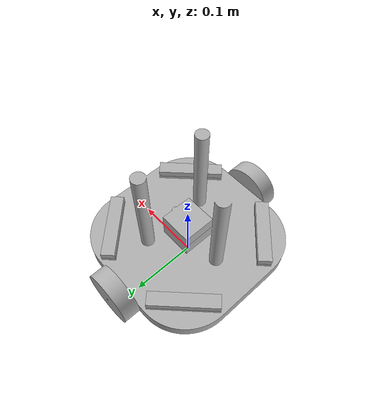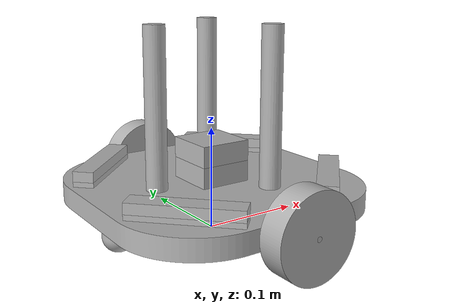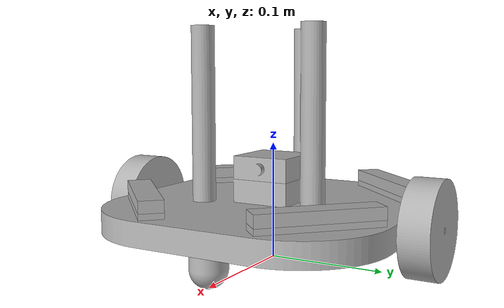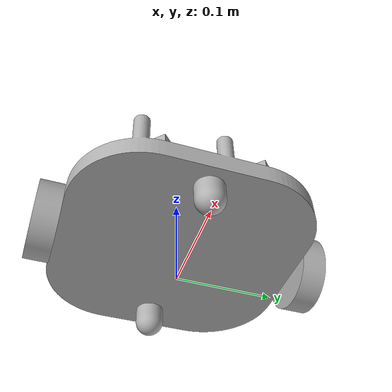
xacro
<?xml version="1.0" ?>
<robot name="uv_bot" xmlns:xacro="http://www.ros.org/wiki/xacro">

<xacro:include filename="$(find uv_bot_description)/urdf/materials.xacro" />
<xacro:include filename="$(find uv_bot_description)/urdf/uv_bot.trans" />
<xacro:include filename="$(find uv_bot_description)/gazebo/uv_bot_materials.gazebo" />
<xacro:include filename="$(find uv_bot_description)/gazebo/uv_bot_physics.gazebo" />
<xacro:include filename="$(find uv_bot_description)/gazebo/uv_bot_plugins.gazebo" />
<link name="base_link">
  <inertial>
    <origin rpy="0 0 0" xyz="3.571806660652383e-06 3.571806646843747e-06 0.04975376079280466"/>
    <mass value="1.468929546083317"/>
    <inertia ixx="0.007559" ixy="0.0" ixz="-0.0" iyy="0.007538" iyz="-0.0" izz="0.012508"/>
  </inertial>
  <visual>
    <origin rpy="0 0 0" xyz="0 0 0"/>
    <geometry>
      <mesh filename="package://uv_bot_description/meshes/base_link.stl" scale="0.001 0.001 0.001"/>
    </geometry>
    <material name="silver_default"/>
  </visual>
  <collision>
    <origin rpy="0 0 0" xyz="0 0 0"/>
    <geometry>
      <mesh filename="package://uv_bot_description/meshes/base_link.stl" scale="0.001 0.001 0.001"/>
    </geometry>
  </collision>
</link>

<link name="wheel_right_1">
  <inertial>
    <origin rpy="0 0 0" xyz="-1.026309976962807e-15 -0.012500000000000011 1.0408340855860843e-16"/>
    <mass value="0.11641073403106551"/>
    <inertia ixx="5.3e-05" ixy="-0.0" ixz="-0.0" iyy="9.3e-05" iyz="-0.0" izz="5.3e-05"/>
  </inertial>
  <visual>
    <origin rpy="0 0 0" xyz="-0.0 0.125 -0.04"/>
    <geometry>
      <mesh filename="package://uv_bot_description/meshes/wheel_right_1.stl" scale="0.001 0.001 0.001"/>
    </geometry>
    <material name="silver_default"/>
  </visual>
  <collision>
    <origin rpy="0 0 0" xyz="-0.0 0.125 -0.04"/>
    <geometry>
      <mesh filename="package://uv_bot_description/meshes/wheel_right_1.stl" scale="0.001 0.001 0.001"/>
    </geometry>
  </collision>
</link>

<link name="wheel_left_1">
  <inertial>
    <origin rpy="0 0 0" xyz="-1.026309976962807e-15 0.012499999999999983 6.938893903907228e-18"/>
    <mass value="0.11641073403106551"/>
    <inertia ixx="5.3e-05" ixy="-0.0" ixz="-0.0" iyy="9.3e-05" iyz="0.0" izz="5.3e-05"/>
  </inertial>
  <visual>
    <origin rpy="0 0 0" xyz="-0.0 -0.125 -0.04"/>
    <geometry>
      <mesh filename="package://uv_bot_description/meshes/wheel_left_1.stl" scale="0.001 0.001 0.001"/>
    </geometry>
    <material name="silver_default"/>
  </visual>
  <collision>
    <origin rpy="0 0 0" xyz="-0.0 -0.125 -0.04"/>
    <geometry>
      <mesh filename="package://uv_bot_description/meshes/wheel_left_1.stl" scale="0.001 0.001 0.001"/>
    </geometry>
  </collision>
</link>

<link name="camera_1">
  <inertial>
    <origin rpy="0 0 0" xyz="0.0002143013758641091 -8.14986513430258e-15 0.010000000000000009"/>
    <mass value="0.4505107297903865"/>
    <inertia ixx="0.000108" ixy="0.0" ixz="-0.0" iyy="0.000111" iyz="0.0" izz="0.000189"/>
  </inertial>
  <visual>
    <origin rpy="0 0 0" xyz="-0.0 -0.0 -0.07"/>
    <geometry>
      <mesh filename="package://uv_bot_description/meshes/camera_1.stl" scale="0.001 0.001 0.001"/>
    </geometry>
    <material name="silver_default"/>
  </visual>
  <collision>
    <origin rpy="0 0 0" xyz="-0.0 -0.0 -0.07"/>
    <geometry>
      <mesh filename="package://uv_bot_description/meshes/camera_1.stl" scale="0.001 0.001 0.001"/>
    </geometry>
  </collision>
</link>

<link name="uss_fr_1">
  <inertial>
    <origin rpy="0 0 0" xyz="-2.0343559643809517e-07 2.5406947977424377e-07 0.004999999999999984"/>
    <mass value="0.1787999999999997"/>
    <inertia ixx="7.9e-05" ixy="-7.2e-05" ixz="-0.0" iyy="7.9e-05" iyz="0.0" izz="0.000155"/>
  </inertial>
  <visual>
    <origin rpy="0 0 0" xyz="-0.078787 0.077782 -0.055"/>
    <geometry>
      <mesh filename="package://uv_bot_description/meshes/uss_fr_1.stl" scale="0.001 0.001 0.001"/>
    </geometry>
    <material name="silver_default"/>
  </visual>
  <collision>
    <origin rpy="0 0 0" xyz="-0.078787 0.077782 -0.055"/>
    <geometry>
      <mesh filename="package://uv_bot_description/meshes/uss_fr_1.stl" scale="0.001 0.001 0.001"/>
    </geometry>
  </collision>
</link>

<link name="uss_fl_1">
  <inertial>
    <origin rpy="0 0 0" xyz="-2.5406947992689943e-07 -2.0343559625768393e-07 0.005000000000000011"/>
    <mass value="0.17879999999999974"/>
    <inertia ixx="7.9e-05" ixy="7.2e-05" ixz="0.0" iyy="7.9e-05" iyz="0.0" izz="0.000155"/>
  </inertial>
  <visual>
    <origin rpy="0 0 0" xyz="-0.077782 -0.078787 -0.055"/>
    <geometry>
      <mesh filename="package://uv_bot_description/meshes/uss_fl_1.stl" scale="0.001 0.001 0.001"/>
    </geometry>
    <material name="silver_default"/>
  </visual>
  <collision>
    <origin rpy="0 0 0" xyz="-0.077782 -0.078787 -0.055"/>
    <geometry>
      <mesh filename="package://uv_bot_description/meshes/uss_fl_1.stl" scale="0.001 0.001 0.001"/>
    </geometry>
  </collision>
</link>

<link name="uss_bl_1">
  <inertial>
    <origin rpy="0 0 0" xyz="1.7818242700751163e-07 -2.793226491909495e-07 0.005000000000000025"/>
    <mass value="0.1787999999999999"/>
    <inertia ixx="7.9e-05" ixy="-7.2e-05" ixz="0.0" iyy="7.9e-05" iyz="-0.0" izz="0.000155"/>
  </inertial>
  <visual>
    <origin rpy="0 0 0" xyz="0.078292 -0.078277 -0.055"/>
    <geometry>
      <mesh filename="package://uv_bot_description/meshes/uss_bl_1.stl" scale="0.001 0.001 0.001"/>
    </geometry>
    <material name="silver_default"/>
  </visual>
  <collision>
    <origin rpy="0 0 0" xyz="0.078292 -0.078277 -0.055"/>
    <geometry>
      <mesh filename="package://uv_bot_description/meshes/uss_bl_1.stl" scale="0.001 0.001 0.001"/>
    </geometry>
  </collision>
</link>

<link name="uss_br_1">
  <inertial>
    <origin rpy="0 0 0" xyz="2.5406947978812155e-07 2.034355963964618e-07 0.004999999999999984"/>
    <mass value="0.17880000000000001"/>
    <inertia ixx="7.9e-05" ixy="7.2e-05" ixz="-0.0" iyy="7.9e-05" iyz="-0.0" izz="0.000155"/>
  </inertial>
  <visual>
    <origin rpy="0 0 0" xyz="0.077782 0.078787 -0.055"/>
    <geometry>
      <mesh filename="package://uv_bot_description/meshes/uss_br_1.stl" scale="0.001 0.001 0.001"/>
    </geometry>
    <material name="silver_default"/>
  </visual>
  <collision>
    <origin rpy="0 0 0" xyz="0.077782 0.078787 -0.055"/>
    <geometry>
      <mesh filename="package://uv_bot_description/meshes/uss_br_1.stl" scale="0.001 0.001 0.001"/>
    </geometry>
  </collision>
</link>

<link name="caster_front_1">
  <inertial>
    <origin rpy="0 0 0" xyz="0.050000000000000044 -0.05 -0.012749999999999942"/>
    <mass value="0.047712938426394985"/>
    <inertia ixx="5e-06" ixy="-0.0" ixz="-0.0" iyy="5e-06" iyz="-0.0" izz="5e-06"/>
  </inertial>
  <visual>
    <origin rpy="0 0 0" xyz="-0.05 -0.05 -0.03"/>
    <geometry>
      <mesh filename="package://uv_bot_description/meshes/caster_front_1.stl" scale="0.001 0.001 0.001"/>
    </geometry>
    <material name="silver_default"/>
  </visual>
  <collision>
    <origin rpy="0 0 0" xyz="-0.05 -0.05 -0.03"/>
    <geometry>
      <mesh filename="package://uv_bot_description/meshes/caster_front_1.stl" scale="0.001 0.001 0.001"/>
    </geometry>
  </collision>
</link>

<link name="caster_back_1">
  <inertial>
    <origin rpy="0 0 0" xyz="-0.049999999999999975 0.05 -0.012750000000000046"/>
    <mass value="0.047712938426394985"/>
    <inertia ixx="5e-06" ixy="0.0" ixz="-0.0" iyy="5e-06" iyz="-0.0" izz="5e-06"/>
  </inertial>
  <visual>
    <origin rpy="0 0 0" xyz="0.05 0.05 -0.03"/>
    <geometry>
      <mesh filename="package://uv_bot_description/meshes/caster_back_1.stl" scale="0.001 0.001 0.001"/>
    </geometry>
    <material name="silver_default"/>
  </visual>
  <collision>
    <origin rpy="0 0 0" xyz="0.05 0.05 -0.03"/>
    <geometry>
      <mesh filename="package://uv_bot_description/meshes/caster_back_1.stl" scale="0.001 0.001 0.001"/>
    </geometry>
  </collision>
</link>

<joint name="motor_right" type="continuous">
  <origin rpy="0 0 0" xyz="0.0 -0.125 0.04"/>
  <parent link="base_link"/>
  <child link="wheel_right_1"/>
  <axis xyz="0.0 1.0 0.0"/>
</joint>

<joint name="motor_left" type="continuous">
  <origin rpy="0 0 0" xyz="0.0 0.125 0.04"/>
  <parent link="base_link"/>
  <child link="wheel_left_1"/>
  <axis xyz="0.0 1.0 0.0"/>
</joint>

<joint name="camera_joint" type="fixed">
  <origin rpy="0 0 0" xyz="0.0 0.0 0.07"/>
  <parent link="base_link"/>
  <child link="camera_1"/>
</joint>

<joint name="uss_fr_rigid" type="fixed">
  <origin rpy="0 0 0" xyz="0.078787 -0.077782 0.055"/>
  <parent link="base_link"/>
  <child link="uss_fr_1"/>
</joint>

<joint name="uss_fl_rigid" type="fixed">
  <origin rpy="0 0 0" xyz="0.077782 0.078787 0.055"/>
  <parent link="base_link"/>
  <child link="uss_fl_1"/>
</joint>

<joint name="uss_bl_rigid" type="fixed">
  <origin rpy="0 0 0" xyz="-0.078292 0.078277 0.055"/>
  <parent link="base_link"/>
  <child link="uss_bl_1"/>
</joint>

<joint name="uss_br_rigid" type="fixed">
  <origin rpy="0 0 0" xyz="-0.077782 -0.078787 0.055"/>
  <parent link="base_link"/>
  <child link="uss_br_1"/>
</joint>

<joint name="caster_front_rigid" type="fixed">
  <origin rpy="0 0 0" xyz="0.05 0.05 0.03"/>
  <parent link="base_link"/>
  <child link="caster_front_1"/>
</joint>

<joint name="caster_back_rigid" type="fixed">
  <origin rpy="0 0 0" xyz="-0.05 -0.05 0.03"/>
  <parent link="base_link"/>
  <child link="caster_back_1"/>
</joint>

</robot>

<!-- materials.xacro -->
<robot name="uv_bot" xmlns:xacro="http://www.ros.org/wiki/xacro" >

<material name="silver_default">
  <color rgba="0.700 0.700 0.700 1.000"/>
</material>

</robot>

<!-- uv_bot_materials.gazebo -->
<robot name="uv_bot" xmlns:xacro="http://www.ros.org/wiki/xacro" >

<xacro:property name="body_color" value="Gazebo/Yellow" />
<xacro:property name="sensor_color" value="Gazebo/Red" />
<xacro:property name="caster_color" value="Gazebo/Green" />
<xacro:property name="wheel_color" value="Gazebo/Black" />

<gazebo reference="base_link">
  <material>${body_color}</material>
</gazebo>

<gazebo reference="wheel_right_1">
  <material>${wheel_color}</material>
</gazebo>

<gazebo reference="wheel_left_1">
  <material>${wheel_color}</material>
</gazebo>

<gazebo reference="camera_1">
  <material>${sensor_color}</material>
</gazebo>

<gazebo reference="uss_fr_1">
  <material>${sensor_color}</material>
</gazebo>

<gazebo reference="uss_fl_1">
  <material>${sensor_color}</material>
</gazebo>

<gazebo reference="uss_bl_1">
  <material>${sensor_color}</material>
</gazebo>

<gazebo reference="uss_br_1">
  <material>${sensor_color}</material>
</gazebo>

<gazebo reference="caster_front_1">
  <material>${caster_color}</material>
</gazebo>

<gazebo reference="caster_back_1">
  <material>${caster_color}</material>
</gazebo>

</robot>
